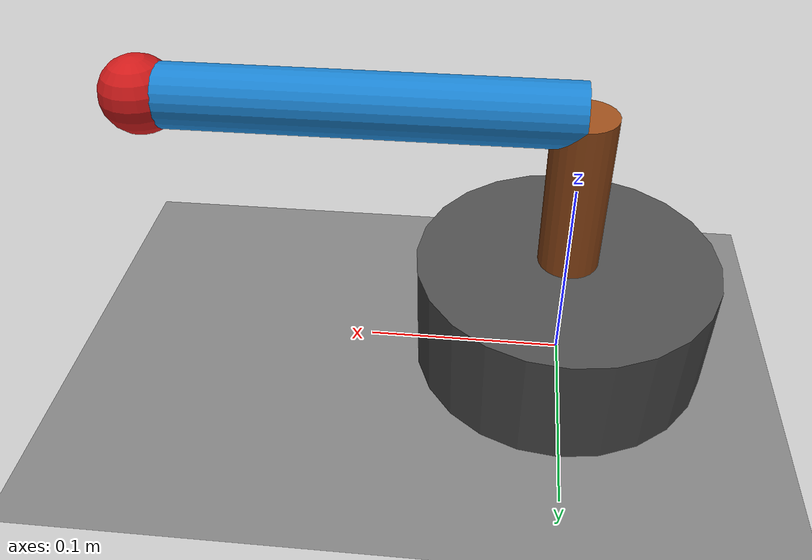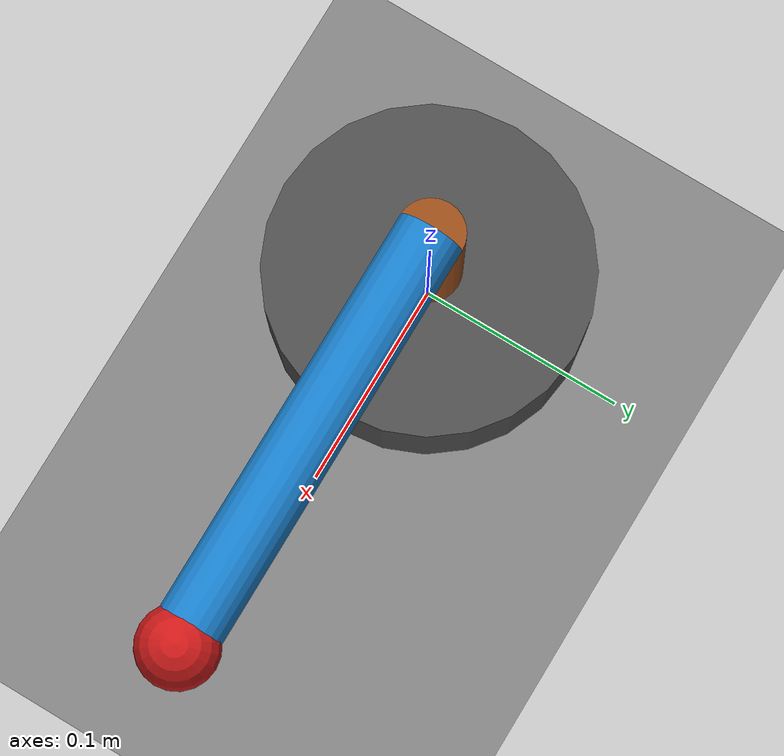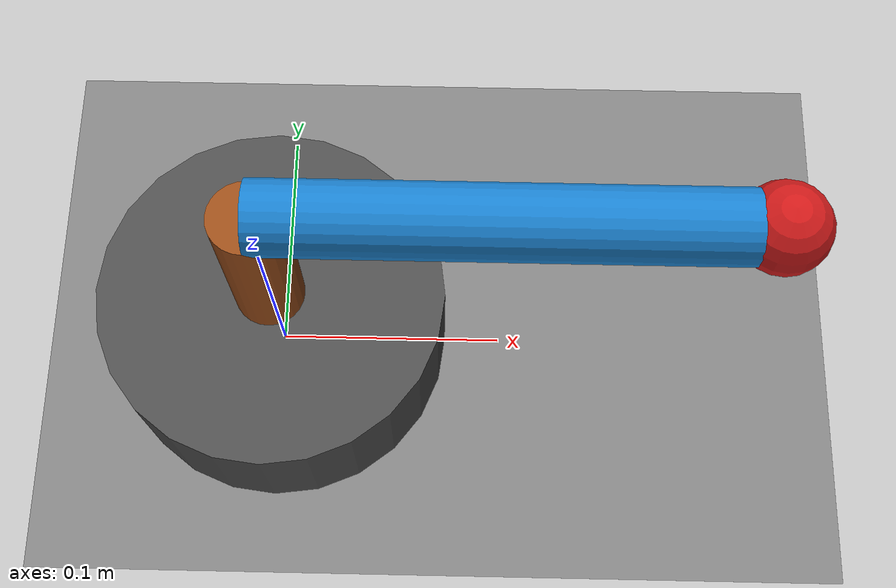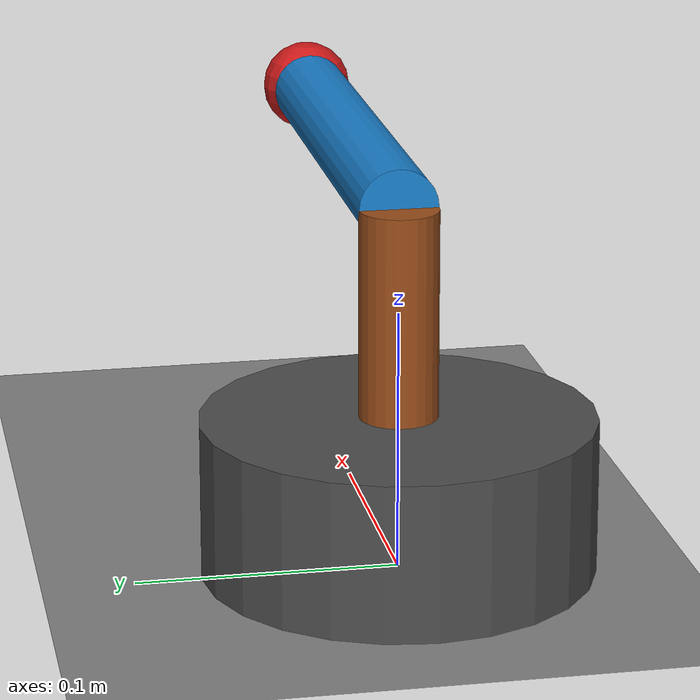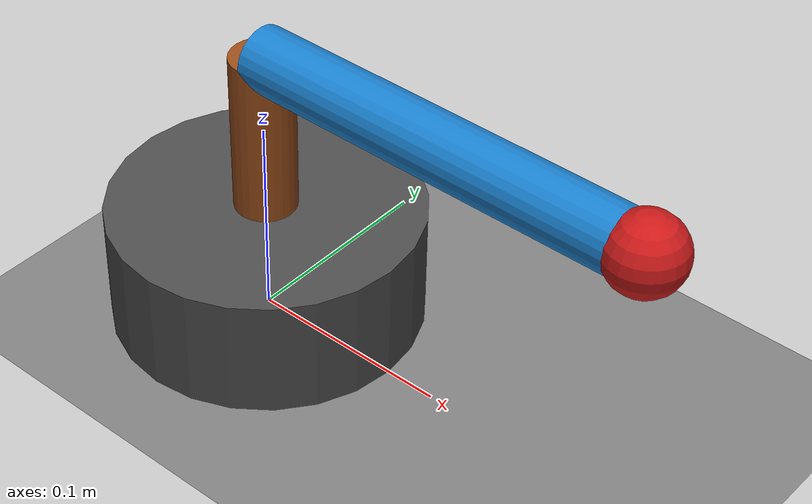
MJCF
<mujoco model="load_test">
  <option timestep="0.001" gravity="0 0 -9.81"/>

  <worldbody>
    <geom name="floor" type="plane" size="2 2 0.1"/>
    <light directional="true" pos="0 0 3" dir="0 0 -1"/>

    <body name="base" pos="0 0 0.03">
      <geom type="cylinder" size="0.075 0.03" rgba="0.3 0.3 0.3 1"/>

      <body name="link1" pos="0 0 0.07">
        <joint name="joint1" type="hinge" axis="0 0 1" limited="false" damping="0.1"/>
        <geom type="cylinder" size="0.015 0.04" rgba="0.6 0.3 0.1 1"/>
        <inertial pos="0 0 0" mass="0.5" diaginertia="0.001 0.001 0.0001"/>

        <body name="arm" pos="0.1 0 0.04">
          <geom type="cylinder" size="0.015 0.1"
                quat="0.707107 0 0.707107 0" rgba="0.1 0.5 0.8 1"/>
          <inertial pos="0 0 0" mass="1.1097676048805944"
                    diaginertia="0.00376165 0.00376165 0.00012485"/>

          <body name="load" pos="0.1 0 0">
            <geom type="sphere" size="0.018253966249301673" rgba="0.8 0.1 0.1 1"/>
            <inertial pos="0 0 0" mass="0.2"
                      diaginertia="0.00002666 0.00002666 0.00002666"/>
          </body>
        </body>
      </body>
    </body>
  </worldbody>

  <actuator>
    <motor name="motor1" joint="joint1" gear="1" ctrllimited="true" ctrlrange="-15.54 15.54"/>
  </actuator>
</mujoco>
